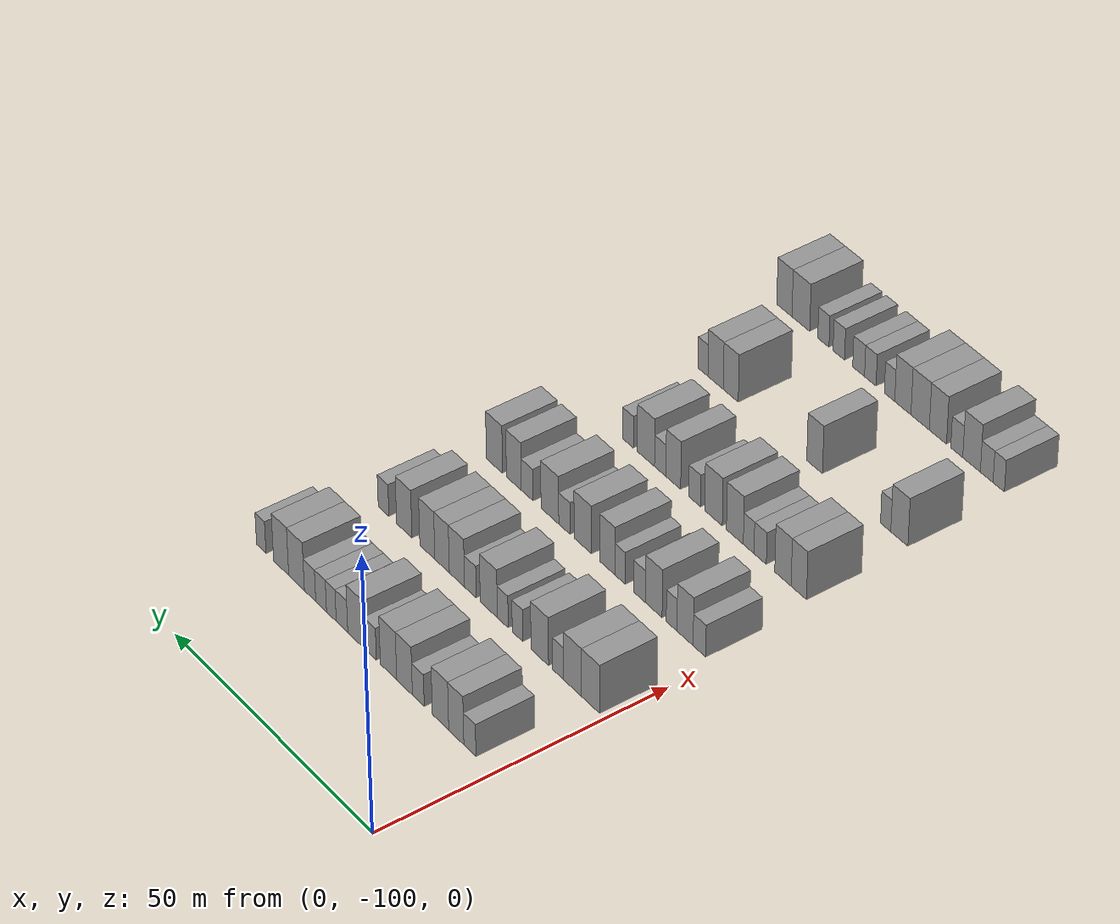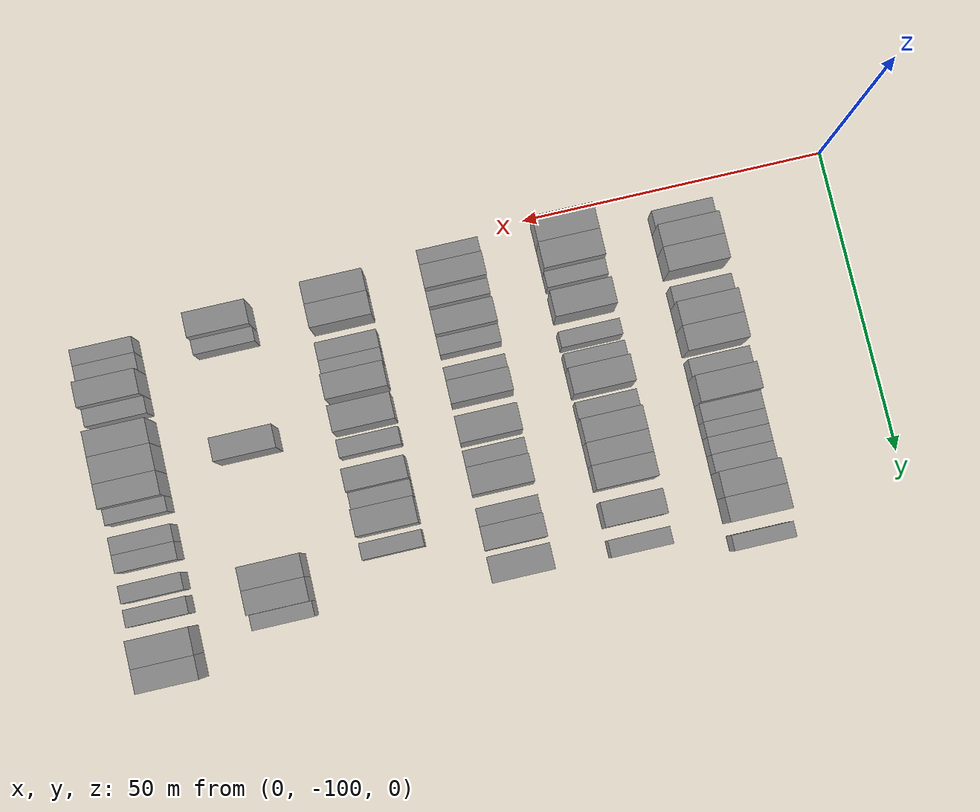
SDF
<sdf version="1.6">
 <world name="default">
  <model name="building_62">
   <static>1</static>
   <pose>25.0000 -94.2913 0 0.000000 0.000000 0.000000</pose>
   <link name="link">
    <pose>0 0 3.00 0 0 0</pose>
    <collision name="collision"><geometry><box><size>10.0000 2.9294 6.0000</size></box></geometry></collision>
    <visual name="visual">
     <cast_shadows>0</cast_shadows>
     <geometry><box><size>10.0000 2.9294 6.0000</size></box></geometry>
     <material>
      <script>
       <uri>model://grey_wall/materials/scripts</uri>
       <uri>model://grey_wall/materials/textures</uri>
       <name>vrc/grey_wall</name>
      </script>
     </material>
    </visual>
   </link>
  </model>
  <model name="building_63">
   <static>1</static>
   <pose>25.0000 -90.9836 0 0.000000 0.000000 0.000000</pose>
   <link name="link">
    <pose>0 0 4.50 0 0 0</pose>
    <collision name="collision"><geometry><box><size>10.0000 3.6861 9.0000</size></box></geometry></collision>
    <visual name="visual">
     <cast_shadows>0</cast_shadows>
     <geometry><box><size>10.0000 3.6861 9.0000</size></box></geometry>
     <material>
      <script>
       <uri>model://grey_wall/materials/scripts</uri>
       <uri>model://grey_wall/materials/textures</uri>
       <name>vrc/grey_wall</name>
      </script>
     </material>
    </visual>
   </link>
  </model>
  <model name="building_64">
   <static>1</static>
   <pose>25.0000 -87.1364 0 0.000000 0.000000 0.000000</pose>
   <link name="link">
    <pose>0 0 4.50 0 0 0</pose>
    <collision name="collision"><geometry><box><size>10.0000 4.0083 9.0000</size></box></geometry></collision>
    <visual name="visual">
     <cast_shadows>0</cast_shadows>
     <geometry><box><size>10.0000 4.0083 9.0000</size></box></geometry>
     <material>
      <script>
       <uri>model://grey_wall/materials/scripts</uri>
       <uri>model://grey_wall/materials/textures</uri>
       <name>vrc/grey_wall</name>
      </script>
     </material>
    </visual>
   </link>
  </model>
  <model name="building_65">
   <static>1</static>
   <pose>25.0000 -81.6730 0 0.000000 0.000000 0.000000</pose>
   <link name="link">
    <pose>0 0 3.00 0 0 0</pose>
    <collision name="collision"><geometry><box><size>10.0000 2.9185 6.0000</size></box></geometry></collision>
    <visual name="visual">
     <cast_shadows>0</cast_shadows>
     <geometry><box><size>10.0000 2.9185 6.0000</size></box></geometry>
     <material>
      <script>
       <uri>model://grey_wall/materials/scripts</uri>
       <uri>model://grey_wall/materials/textures</uri>
       <name>vrc/grey_wall</name>
      </script>
     </material>
    </visual>
   </link>
  </model>
  <model name="building_66">
   <static>1</static>
   <pose>25.0000 -78.2645 0 0.000000 0.000000 0.000000</pose>
   <link name="link">
    <pose>0 0 4.50 0 0 0</pose>
    <collision name="collision"><geometry><box><size>10.0000 3.8984 9.0000</size></box></geometry></collision>
    <visual name="visual">
     <cast_shadows>0</cast_shadows>
     <geometry><box><size>10.0000 3.8984 9.0000</size></box></geometry>
     <material>
      <script>
       <uri>model://grey_wall/materials/scripts</uri>
       <uri>model://grey_wall/materials/textures</uri>
       <name>vrc/grey_wall</name>
      </script>
     </material>
    </visual>
   </link>
  </model>
  <model name="building_67">
   <static>1</static>
   <pose>25.0000 -74.2709 0 0.000000 0.000000 0.000000</pose>
   <link name="link">
    <pose>0 0 4.50 0 0 0</pose>
    <collision name="collision"><geometry><box><size>10.0000 4.0889 9.0000</size></box></geometry></collision>
    <visual name="visual">
     <cast_shadows>0</cast_shadows>
     <geometry><box><size>10.0000 4.0889 9.0000</size></box></geometry>
     <material>
      <script>
       <uri>model://grey_wall/materials/scripts</uri>
       <uri>model://grey_wall/materials/textures</uri>
       <name>vrc/grey_wall</name>
      </script>
     </material>
    </visual>
   </link>
  </model>
  <model name="building_68">
   <static>1</static>
   <pose>25.0000 -69.7475 0 0.000000 0.000000 0.000000</pose>
   <link name="link">
    <pose>0 0 3.00 0 0 0</pose>
    <collision name="collision"><geometry><box><size>10.0000 2.9579 6.0000</size></box></geometry></collision>
    <visual name="visual">
     <cast_shadows>0</cast_shadows>
     <geometry><box><size>10.0000 2.9579 6.0000</size></box></geometry>
     <material>
      <script>
       <uri>model://grey_wall/materials/scripts</uri>
       <uri>model://grey_wall/materials/textures</uri>
       <name>vrc/grey_wall</name>
      </script>
     </material>
    </visual>
   </link>
  </model>
  <model name="building_69">
   <static>1</static>
   <pose>25.0000 -66.1230 0 0.000000 0.000000 0.000000</pose>
   <link name="link">
    <pose>0 0 4.50 0 0 0</pose>
    <collision name="collision"><geometry><box><size>10.0000 4.2911 9.0000</size></box></geometry></collision>
    <visual name="visual">
     <cast_shadows>0</cast_shadows>
     <geometry><box><size>10.0000 4.2911 9.0000</size></box></geometry>
     <material>
      <script>
       <uri>model://grey_wall/materials/scripts</uri>
       <uri>model://grey_wall/materials/textures</uri>
       <name>vrc/grey_wall</name>
      </script>
     </material>
    </visual>
   </link>
  </model>
  <model name="building_70">
   <static>1</static>
   <pose>25.0000 -62.5057 0 0.000000 0.000000 0.000000</pose>
   <link name="link">
    <pose>0 0 3.00 0 0 0</pose>
    <collision name="collision"><geometry><box><size>10.0000 2.9437 6.0000</size></box></geometry></collision>
    <visual name="visual">
     <cast_shadows>0</cast_shadows>
     <geometry><box><size>10.0000 2.9437 6.0000</size></box></geometry>
     <material>
      <script>
       <uri>model://grey_wall/materials/scripts</uri>
       <uri>model://grey_wall/materials/textures</uri>
       <name>vrc/grey_wall</name>
      </script>
     </material>
    </visual>
   </link>
  </model>
  <model name="building_71">
   <static>1</static>
   <pose>25.0000 -59.7899 0 0.000000 0.000000 0.000000</pose>
   <link name="link">
    <pose>0 0 3.00 0 0 0</pose>
    <collision name="collision"><geometry><box><size>10.0000 2.4878 6.0000</size></box></geometry></collision>
    <visual name="visual">
     <cast_shadows>0</cast_shadows>
     <geometry><box><size>10.0000 2.4878 6.0000</size></box></geometry>
     <material>
      <script>
       <uri>model://grey_wall/materials/scripts</uri>
       <uri>model://grey_wall/materials/textures</uri>
       <name>vrc/grey_wall</name>
      </script>
     </material>
    </visual>
   </link>
  </model>
  <model name="building_72">
   <static>1</static>
   <pose>25.0000 -57.1538 0 0.000000 0.000000 0.000000</pose>
   <link name="link">
    <pose>0 0 3.00 0 0 0</pose>
    <collision name="collision"><geometry><box><size>10.0000 2.7846 6.0000</size></box></geometry></collision>
    <visual name="visual">
     <cast_shadows>0</cast_shadows>
     <geometry><box><size>10.0000 2.7846 6.0000</size></box></geometry>
     <material>
      <script>
       <uri>model://grey_wall/materials/scripts</uri>
       <uri>model://grey_wall/materials/textures</uri>
       <name>vrc/grey_wall</name>
      </script>
     </material>
    </visual>
   </link>
  </model>
  <model name="building_73">
   <static>1</static>
   <pose>25.0000 -54.2979 0 0.000000 0.000000 0.000000</pose>
   <link name="link">
    <pose>0 0 3.00 0 0 0</pose>
    <collision name="collision"><geometry><box><size>10.0000 2.9271 6.0000</size></box></geometry></collision>
    <visual name="visual">
     <cast_shadows>0</cast_shadows>
     <geometry><box><size>10.0000 2.9271 6.0000</size></box></geometry>
     <material>
      <script>
       <uri>model://grey_wall/materials/scripts</uri>
       <uri>model://grey_wall/materials/textures</uri>
       <name>vrc/grey_wall</name>
      </script>
     </material>
    </visual>
   </link>
  </model>
  <model name="building_74">
   <static>1</static>
   <pose>25.0000 -50.7964 0 0.000000 0.000000 0.000000</pose>
   <link name="link">
    <pose>0 0 4.50 0 0 0</pose>
    <collision name="collision"><geometry><box><size>10.0000 4.0761 9.0000</size></box></geometry></collision>
    <visual name="visual">
     <cast_shadows>0</cast_shadows>
     <geometry><box><size>10.0000 4.0761 9.0000</size></box></geometry>
     <material>
      <script>
       <uri>model://grey_wall/materials/scripts</uri>
       <uri>model://grey_wall/materials/textures</uri>
       <name>vrc/grey_wall</name>
      </script>
     </material>
    </visual>
   </link>
  </model>
  <model name="building_75">
   <static>1</static>
   <pose>25.0000 -46.7807 0 0.000000 0.000000 0.000000</pose>
   <link name="link">
    <pose>0 0 4.50 0 0 0</pose>
    <collision name="collision"><geometry><box><size>10.0000 3.9552 9.0000</size></box></geometry></collision>
    <visual name="visual">
     <cast_shadows>0</cast_shadows>
     <geometry><box><size>10.0000 3.9552 9.0000</size></box></geometry>
     <material>
      <script>
       <uri>model://grey_wall/materials/scripts</uri>
       <uri>model://grey_wall/materials/textures</uri>
       <name>vrc/grey_wall</name>
      </script>
     </material>
    </visual>
   </link>
  </model>
  <model name="building_76">
   <static>1</static>
   <pose>25.0000 -41.5595 0 0.000000 0.000000 0.000000</pose>
   <link name="link">
    <pose>0 0 3.00 0 0 0</pose>
    <collision name="collision"><geometry><box><size>10.0000 2.4872 6.0000</size></box></geometry></collision>
    <visual name="visual">
     <cast_shadows>0</cast_shadows>
     <geometry><box><size>10.0000 2.4872 6.0000</size></box></geometry>
     <material>
      <script>
       <uri>model://grey_wall/materials/scripts</uri>
       <uri>model://grey_wall/materials/textures</uri>
       <name>vrc/grey_wall</name>
      </script>
     </material>
    </visual>
   </link>
  </model>
  <model name="building_229">
   <static>1</static>
   <pose>44.0000 -96.5054 0 0.000000 0.000000 0.000000</pose>
   <link name="link">
    <pose>0 0 4.50 0 0 0</pose>
    <collision name="collision"><geometry><box><size>10.0000 4.3014 9.0000</size></box></geometry></collision>
    <visual name="visual">
     <cast_shadows>0</cast_shadows>
     <geometry><box><size>10.0000 4.3014 9.0000</size></box></geometry>
     <material>
      <script>
       <uri>model://grey_wall/materials/scripts</uri>
       <uri>model://grey_wall/materials/textures</uri>
       <name>vrc/grey_wall</name>
      </script>
     </material>
    </visual>
   </link>
  </model>
  <model name="building_230">
   <static>1</static>
   <pose>44.0000 -92.2120 0 0.000000 0.000000 0.000000</pose>
   <link name="link">
    <pose>0 0 4.50 0 0 0</pose>
    <collision name="collision"><geometry><box><size>10.0000 4.2855 9.0000</size></box></geometry></collision>
    <visual name="visual">
     <cast_shadows>0</cast_shadows>
     <geometry><box><size>10.0000 4.2855 9.0000</size></box></geometry>
     <material>
      <script>
       <uri>model://grey_wall/materials/scripts</uri>
       <uri>model://grey_wall/materials/textures</uri>
       <name>vrc/grey_wall</name>
      </script>
     </material>
    </visual>
   </link>
  </model>
  <model name="building_231">
   <static>1</static>
   <pose>44.0000 -88.7351 0 0.000000 0.000000 0.000000</pose>
   <link name="link">
    <pose>0 0 3.00 0 0 0</pose>
    <collision name="collision"><geometry><box><size>10.0000 2.6683 6.0000</size></box></geometry></collision>
    <visual name="visual">
     <cast_shadows>0</cast_shadows>
     <geometry><box><size>10.0000 2.6683 6.0000</size></box></geometry>
     <material>
      <script>
       <uri>model://grey_wall/materials/scripts</uri>
       <uri>model://grey_wall/materials/textures</uri>
       <name>vrc/grey_wall</name>
      </script>
     </material>
    </visual>
   </link>
  </model>
  <model name="building_232">
   <static>1</static>
   <pose>44.0000 -84.2660 0 0.000000 0.000000 0.000000</pose>
   <link name="link">
    <pose>0 0 4.50 0 0 0</pose>
    <collision name="collision"><geometry><box><size>10.0000 4.2700 9.0000</size></box></geometry></collision>
    <visual name="visual">
     <cast_shadows>0</cast_shadows>
     <geometry><box><size>10.0000 4.2700 9.0000</size></box></geometry>
     <material>
      <script>
       <uri>model://grey_wall/materials/scripts</uri>
       <uri>model://grey_wall/materials/textures</uri>
       <name>vrc/grey_wall</name>
      </script>
     </material>
    </visual>
   </link>
  </model>
  <model name="building_233">
   <static>1</static>
   <pose>44.0000 -78.8281 0 0.000000 0.000000 0.000000</pose>
   <link name="link">
    <pose>0 0 3.00 0 0 0</pose>
    <collision name="collision"><geometry><box><size>10.0000 2.6058 6.0000</size></box></geometry></collision>
    <visual name="visual">
     <cast_shadows>0</cast_shadows>
     <geometry><box><size>10.0000 2.6058 6.0000</size></box></geometry>
     <material>
      <script>
       <uri>model://grey_wall/materials/scripts</uri>
       <uri>model://grey_wall/materials/textures</uri>
       <name>vrc/grey_wall</name>
      </script>
     </material>
    </visual>
   </link>
  </model>
  <model name="building_234">
   <static>1</static>
   <pose>44.0000 -75.1882 0 0.000000 0.000000 0.000000</pose>
   <link name="link">
    <pose>0 0 3.00 0 0 0</pose>
    <collision name="collision"><geometry><box><size>10.0000 2.6739 6.0000</size></box></geometry></collision>
    <visual name="visual">
     <cast_shadows>0</cast_shadows>
     <geometry><box><size>10.0000 2.6739 6.0000</size></box></geometry>
     <material>
      <script>
       <uri>model://grey_wall/materials/scripts</uri>
       <uri>model://grey_wall/materials/textures</uri>
       <name>vrc/grey_wall</name>
      </script>
     </material>
    </visual>
   </link>
  </model>
  <model name="building_235">
   <static>1</static>
   <pose>44.0000 -71.7204 0 0.000000 0.000000 0.000000</pose>
   <link name="link">
    <pose>0 0 4.50 0 0 0</pose>
    <collision name="collision"><geometry><box><size>10.0000 4.2618 9.0000</size></box></geometry></collision>
    <visual name="visual">
     <cast_shadows>0</cast_shadows>
     <geometry><box><size>10.0000 4.2618 9.0000</size></box></geometry>
     <material>
      <script>
       <uri>model://grey_wall/materials/scripts</uri>
       <uri>model://grey_wall/materials/textures</uri>
       <name>vrc/grey_wall</name>
      </script>
     </material>
    </visual>
   </link>
  </model>
  <model name="building_236">
   <static>1</static>
   <pose>44.0000 -67.1307 0 0.000000 0.000000 0.000000</pose>
   <link name="link">
    <pose>0 0 3.00 0 0 0</pose>
    <collision name="collision"><geometry><box><size>10.0000 2.9176 6.0000</size></box></geometry></collision>
    <visual name="visual">
     <cast_shadows>0</cast_shadows>
     <geometry><box><size>10.0000 2.9176 6.0000</size></box></geometry>
     <material>
      <script>
       <uri>model://grey_wall/materials/scripts</uri>
       <uri>model://grey_wall/materials/textures</uri>
       <name>vrc/grey_wall</name>
      </script>
     </material>
    </visual>
   </link>
  </model>
  <model name="building_237">
   <static>1</static>
   <pose>44.0000 -63.7560 0 0.000000 0.000000 0.000000</pose>
   <link name="link">
    <pose>0 0 4.50 0 0 0</pose>
    <collision name="collision"><geometry><box><size>10.0000 3.8317 9.0000</size></box></geometry></collision>
    <visual name="visual">
     <cast_shadows>0</cast_shadows>
     <geometry><box><size>10.0000 3.8317 9.0000</size></box></geometry>
     <material>
      <script>
       <uri>model://grey_wall/materials/scripts</uri>
       <uri>model://grey_wall/materials/textures</uri>
       <name>vrc/grey_wall</name>
      </script>
     </material>
    </visual>
   </link>
  </model>
  <model name="building_238">
   <static>1</static>
   <pose>44.0000 -60.0075 0 0.000000 0.000000 0.000000</pose>
   <link name="link">
    <pose>0 0 4.50 0 0 0</pose>
    <collision name="collision"><geometry><box><size>10.0000 3.6653 9.0000</size></box></geometry></collision>
    <visual name="visual">
     <cast_shadows>0</cast_shadows>
     <geometry><box><size>10.0000 3.6653 9.0000</size></box></geometry>
     <material>
      <script>
       <uri>model://grey_wall/materials/scripts</uri>
       <uri>model://grey_wall/materials/textures</uri>
       <name>vrc/grey_wall</name>
      </script>
     </material>
    </visual>
   </link>
  </model>
  <model name="building_239">
   <static>1</static>
   <pose>44.0000 -56.2583 0 0.000000 0.000000 0.000000</pose>
   <link name="link">
    <pose>0 0 4.50 0 0 0</pose>
    <collision name="collision"><geometry><box><size>10.0000 3.8332 9.0000</size></box></geometry></collision>
    <visual name="visual">
     <cast_shadows>0</cast_shadows>
     <geometry><box><size>10.0000 3.8332 9.0000</size></box></geometry>
     <material>
      <script>
       <uri>model://grey_wall/materials/scripts</uri>
       <uri>model://grey_wall/materials/textures</uri>
       <name>vrc/grey_wall</name>
      </script>
     </material>
    </visual>
   </link>
  </model>
  <model name="building_240">
   <static>1</static>
   <pose>44.0000 -50.3608 0 0.000000 0.000000 0.000000</pose>
   <link name="link">
    <pose>0 0 4.50 0 0 0</pose>
    <collision name="collision"><geometry><box><size>10.0000 3.9616 9.0000</size></box></geometry></collision>
    <visual name="visual">
     <cast_shadows>0</cast_shadows>
     <geometry><box><size>10.0000 3.9616 9.0000</size></box></geometry>
     <material>
      <script>
       <uri>model://grey_wall/materials/scripts</uri>
       <uri>model://grey_wall/materials/textures</uri>
       <name>vrc/grey_wall</name>
      </script>
     </material>
    </visual>
   </link>
  </model>
  <model name="building_241">
   <static>1</static>
   <pose>44.0000 -45.0014 0 0.000000 0.000000 0.000000</pose>
   <link name="link">
    <pose>0 0 3.00 0 0 0</pose>
    <collision name="collision"><geometry><box><size>10.0000 2.7573 6.0000</size></box></geometry></collision>
    <visual name="visual">
     <cast_shadows>0</cast_shadows>
     <geometry><box><size>10.0000 2.7573 6.0000</size></box></geometry>
     <material>
      <script>
       <uri>model://grey_wall/materials/scripts</uri>
       <uri>model://grey_wall/materials/textures</uri>
       <name>vrc/grey_wall</name>
      </script>
     </material>
    </visual>
   </link>
  </model>
  <model name="building_407">
   <static>1</static>
   <pose>63.0000 -96.4798 0 0.000000 0.000000 0.000000</pose>
   <link name="link">
    <pose>0 0 3.00 0 0 0</pose>
    <collision name="collision"><geometry><box><size>10.0000 2.9730 6.0000</size></box></geometry></collision>
    <visual name="visual">
     <cast_shadows>0</cast_shadows>
     <geometry><box><size>10.0000 2.9730 6.0000</size></box></geometry>
     <material>
      <script>
       <uri>model://grey_wall/materials/scripts</uri>
       <uri>model://grey_wall/materials/textures</uri>
       <name>vrc/grey_wall</name>
      </script>
     </material>
    </visual>
   </link>
  </model>
  <model name="building_408">
   <static>1</static>
   <pose>63.0000 -93.0751 0 0.000000 0.000000 0.000000</pose>
   <link name="link">
    <pose>0 0 4.50 0 0 0</pose>
    <collision name="collision"><geometry><box><size>10.0000 3.8363 9.0000</size></box></geometry></collision>
    <visual name="visual">
     <cast_shadows>0</cast_shadows>
     <geometry><box><size>10.0000 3.8363 9.0000</size></box></geometry>
     <material>
      <script>
       <uri>model://grey_wall/materials/scripts</uri>
       <uri>model://grey_wall/materials/textures</uri>
       <name>vrc/grey_wall</name>
      </script>
     </material>
    </visual>
   </link>
  </model>
  <model name="building_409">
   <static>1</static>
   <pose>63.0000 -89.8728 0 0.000000 0.000000 0.000000</pose>
   <link name="link">
    <pose>0 0 3.00 0 0 0</pose>
    <collision name="collision"><geometry><box><size>10.0000 2.5684 6.0000</size></box></geometry></collision>
    <visual name="visual">
     <cast_shadows>0</cast_shadows>
     <geometry><box><size>10.0000 2.5684 6.0000</size></box></geometry>
     <material>
      <script>
       <uri>model://grey_wall/materials/scripts</uri>
       <uri>model://grey_wall/materials/textures</uri>
       <name>vrc/grey_wall</name>
      </script>
     </material>
    </visual>
   </link>
  </model>
  <model name="building_410">
   <static>1</static>
   <pose>63.0000 -85.6024 0 0.000000 0.000000 0.000000</pose>
   <link name="link">
    <pose>0 0 4.50 0 0 0</pose>
    <collision name="collision"><geometry><box><size>10.0000 3.9724 9.0000</size></box></geometry></collision>
    <visual name="visual">
     <cast_shadows>0</cast_shadows>
     <geometry><box><size>10.0000 3.9724 9.0000</size></box></geometry>
     <material>
      <script>
       <uri>model://grey_wall/materials/scripts</uri>
       <uri>model://grey_wall/materials/textures</uri>
       <name>vrc/grey_wall</name>
      </script>
     </material>
    </visual>
   </link>
  </model>
  <model name="building_411">
   <static>1</static>
   <pose>63.0000 -82.1490 0 0.000000 0.000000 0.000000</pose>
   <link name="link">
    <pose>0 0 3.00 0 0 0</pose>
    <collision name="collision"><geometry><box><size>10.0000 2.9343 6.0000</size></box></geometry></collision>
    <visual name="visual">
     <cast_shadows>0</cast_shadows>
     <geometry><box><size>10.0000 2.9343 6.0000</size></box></geometry>
     <material>
      <script>
       <uri>model://grey_wall/materials/scripts</uri>
       <uri>model://grey_wall/materials/textures</uri>
       <name>vrc/grey_wall</name>
      </script>
     </material>
    </visual>
   </link>
  </model>
  <model name="building_412">
   <static>1</static>
   <pose>63.0000 -77.4513 0 0.000000 0.000000 0.000000</pose>
   <link name="link">
    <pose>0 0 3.00 0 0 0</pose>
    <collision name="collision"><geometry><box><size>10.0000 2.4612 6.0000</size></box></geometry></collision>
    <visual name="visual">
     <cast_shadows>0</cast_shadows>
     <geometry><box><size>10.0000 2.4612 6.0000</size></box></geometry>
     <material>
      <script>
       <uri>model://grey_wall/materials/scripts</uri>
       <uri>model://grey_wall/materials/textures</uri>
       <name>vrc/grey_wall</name>
      </script>
     </material>
    </visual>
   </link>
  </model>
  <model name="building_413">
   <static>1</static>
   <pose>63.0000 -74.3368 0 0.000000 0.000000 0.000000</pose>
   <link name="link">
    <pose>0 0 4.50 0 0 0</pose>
    <collision name="collision"><geometry><box><size>10.0000 3.7678 9.0000</size></box></geometry></collision>
    <visual name="visual">
     <cast_shadows>0</cast_shadows>
     <geometry><box><size>10.0000 3.7678 9.0000</size></box></geometry>
     <material>
      <script>
       <uri>model://grey_wall/materials/scripts</uri>
       <uri>model://grey_wall/materials/textures</uri>
       <name>vrc/grey_wall</name>
      </script>
     </material>
    </visual>
   </link>
  </model>
  <model name="building_414">
   <static>1</static>
   <pose>63.0000 -68.2939 0 0.000000 0.000000 0.000000</pose>
   <link name="link">
    <pose>0 0 4.50 0 0 0</pose>
    <collision name="collision"><geometry><box><size>10.0000 4.3180 9.0000</size></box></geometry></collision>
    <visual name="visual">
     <cast_shadows>0</cast_shadows>
     <geometry><box><size>10.0000 4.3180 9.0000</size></box></geometry>
     <material>
      <script>
       <uri>model://grey_wall/materials/scripts</uri>
       <uri>model://grey_wall/materials/textures</uri>
       <name>vrc/grey_wall</name>
      </script>
     </material>
    </visual>
   </link>
  </model>
  <model name="building_415">
   <static>1</static>
   <pose>63.0000 -63.7222 0 0.000000 0.000000 0.000000</pose>
   <link name="link">
    <pose>0 0 3.00 0 0 0</pose>
    <collision name="collision"><geometry><box><size>10.0000 2.8254 6.0000</size></box></geometry></collision>
    <visual name="visual">
     <cast_shadows>0</cast_shadows>
     <geometry><box><size>10.0000 2.8254 6.0000</size></box></geometry>
     <material>
      <script>
       <uri>model://grey_wall/materials/scripts</uri>
       <uri>model://grey_wall/materials/textures</uri>
       <name>vrc/grey_wall</name>
      </script>
     </material>
    </visual>
   </link>
  </model>
  <model name="building_416">
   <static>1</static>
   <pose>63.0000 -60.0894 0 0.000000 0.000000 0.000000</pose>
   <link name="link">
    <pose>0 0 4.50 0 0 0</pose>
    <collision name="collision"><geometry><box><size>10.0000 4.4404 9.0000</size></box></geometry></collision>
    <visual name="visual">
     <cast_shadows>0</cast_shadows>
     <geometry><box><size>10.0000 4.4404 9.0000</size></box></geometry>
     <material>
      <script>
       <uri>model://grey_wall/materials/scripts</uri>
       <uri>model://grey_wall/materials/textures</uri>
       <name>vrc/grey_wall</name>
      </script>
     </material>
    </visual>
   </link>
  </model>
  <model name="building_417">
   <static>1</static>
   <pose>63.0000 -54.3757 0 0.000000 0.000000 0.000000</pose>
   <link name="link">
    <pose>0 0 3.00 0 0 0</pose>
    <collision name="collision"><geometry><box><size>10.0000 2.9869 6.0000</size></box></geometry></collision>
    <visual name="visual">
     <cast_shadows>0</cast_shadows>
     <geometry><box><size>10.0000 2.9869 6.0000</size></box></geometry>
     <material>
      <script>
       <uri>model://grey_wall/materials/scripts</uri>
       <uri>model://grey_wall/materials/textures</uri>
       <name>vrc/grey_wall</name>
      </script>
     </material>
    </visual>
   </link>
  </model>
  <model name="building_418">
   <static>1</static>
   <pose>63.0000 -50.9946 0 0.000000 0.000000 0.000000</pose>
   <link name="link">
    <pose>0 0 4.50 0 0 0</pose>
    <collision name="collision"><geometry><box><size>10.0000 3.7754 9.0000</size></box></geometry></collision>
    <visual name="visual">
     <cast_shadows>0</cast_shadows>
     <geometry><box><size>10.0000 3.7754 9.0000</size></box></geometry>
     <material>
      <script>
       <uri>model://grey_wall/materials/scripts</uri>
       <uri>model://grey_wall/materials/textures</uri>
       <name>vrc/grey_wall</name>
      </script>
     </material>
    </visual>
   </link>
  </model>
  <model name="building_419">
   <static>1</static>
   <pose>63.0000 -46.0370 0 0.000000 0.000000 0.000000</pose>
   <link name="link">
    <pose>0 0 4.50 0 0 0</pose>
    <collision name="collision"><geometry><box><size>10.0000 4.1398 9.0000</size></box></geometry></collision>
    <visual name="visual">
     <cast_shadows>0</cast_shadows>
     <geometry><box><size>10.0000 4.1398 9.0000</size></box></geometry>
     <material>
      <script>
       <uri>model://grey_wall/materials/scripts</uri>
       <uri>model://grey_wall/materials/textures</uri>
       <name>vrc/grey_wall</name>
      </script>
     </material>
    </visual>
   </link>
  </model>
  <model name="building_577">
   <static>1</static>
   <pose>82.0000 -94.7768 0 0.000000 0.000000 0.000000</pose>
   <link name="link">
    <pose>0 0 4.50 0 0 0</pose>
    <collision name="collision"><geometry><box><size>10.0000 3.6217 9.0000</size></box></geometry></collision>
    <visual name="visual">
     <cast_shadows>0</cast_shadows>
     <geometry><box><size>10.0000 3.6217 9.0000</size></box></geometry>
     <material>
      <script>
       <uri>model://grey_wall/materials/scripts</uri>
       <uri>model://grey_wall/materials/textures</uri>
       <name>vrc/grey_wall</name>
      </script>
     </material>
    </visual>
   </link>
  </model>
  <model name="building_578">
   <static>1</static>
   <pose>82.0000 -91.0421 0 0.000000 0.000000 0.000000</pose>
   <link name="link">
    <pose>0 0 4.50 0 0 0</pose>
    <collision name="collision"><geometry><box><size>10.0000 3.8477 9.0000</size></box></geometry></collision>
    <visual name="visual">
     <cast_shadows>0</cast_shadows>
     <geometry><box><size>10.0000 3.8477 9.0000</size></box></geometry>
     <material>
      <script>
       <uri>model://grey_wall/materials/scripts</uri>
       <uri>model://grey_wall/materials/textures</uri>
       <name>vrc/grey_wall</name>
      </script>
     </material>
    </visual>
   </link>
  </model>
  <model name="building_579">
   <static>1</static>
   <pose>82.0000 -85.6497 0 0.000000 0.000000 0.000000</pose>
   <link name="link">
    <pose>0 0 3.00 0 0 0</pose>
    <collision name="collision"><geometry><box><size>10.0000 2.9372 6.0000</size></box></geometry></collision>
    <visual name="visual">
     <cast_shadows>0</cast_shadows>
     <geometry><box><size>10.0000 2.9372 6.0000</size></box></geometry>
     <material>
      <script>
       <uri>model://grey_wall/materials/scripts</uri>
       <uri>model://grey_wall/materials/textures</uri>
       <name>vrc/grey_wall</name>
      </script>
     </material>
    </visual>
   </link>
  </model>
  <model name="building_580">
   <static>1</static>
   <pose>82.0000 -82.9049 0 0.000000 0.000000 0.000000</pose>
   <link name="link">
    <pose>0 0 3.00 0 0 0</pose>
    <collision name="collision"><geometry><box><size>10.0000 2.5524 6.0000</size></box></geometry></collision>
    <visual name="visual">
     <cast_shadows>0</cast_shadows>
     <geometry><box><size>10.0000 2.5524 6.0000</size></box></geometry>
     <material>
      <script>
       <uri>model://grey_wall/materials/scripts</uri>
       <uri>model://grey_wall/materials/textures</uri>
       <name>vrc/grey_wall</name>
      </script>
     </material>
    </visual>
   </link>
  </model>
  <model name="building_581">
   <static>1</static>
   <pose>82.0000 -79.5986 0 0.000000 0.000000 0.000000</pose>
   <link name="link">
    <pose>0 0 4.50 0 0 0</pose>
    <collision name="collision"><geometry><box><size>10.0000 4.0602 9.0000</size></box></geometry></collision>
    <visual name="visual">
     <cast_shadows>0</cast_shadows>
     <geometry><box><size>10.0000 4.0602 9.0000</size></box></geometry>
     <material>
      <script>
       <uri>model://grey_wall/materials/scripts</uri>
       <uri>model://grey_wall/materials/textures</uri>
       <name>vrc/grey_wall</name>
      </script>
     </material>
    </visual>
   </link>
  </model>
  <model name="building_582">
   <static>1</static>
   <pose>82.0000 -74.4341 0 0.000000 0.000000 0.000000</pose>
   <link name="link">
    <pose>0 0 4.50 0 0 0</pose>
    <collision name="collision"><geometry><box><size>10.0000 4.2687 9.0000</size></box></geometry></collision>
    <visual name="visual">
     <cast_shadows>0</cast_shadows>
     <geometry><box><size>10.0000 4.2687 9.0000</size></box></geometry>
     <material>
      <script>
       <uri>model://grey_wall/materials/scripts</uri>
       <uri>model://grey_wall/materials/textures</uri>
       <name>vrc/grey_wall</name>
      </script>
     </material>
    </visual>
   </link>
  </model>
  <model name="building_583">
   <static>1</static>
   <pose>82.0000 -69.8637 0 0.000000 0.000000 0.000000</pose>
   <link name="link">
    <pose>0 0 3.00 0 0 0</pose>
    <collision name="collision"><geometry><box><size>10.0000 2.8721 6.0000</size></box></geometry></collision>
    <visual name="visual">
     <cast_shadows>0</cast_shadows>
     <geometry><box><size>10.0000 2.8721 6.0000</size></box></geometry>
     <material>
      <script>
       <uri>model://grey_wall/materials/scripts</uri>
       <uri>model://grey_wall/materials/textures</uri>
       <name>vrc/grey_wall</name>
      </script>
     </material>
    </visual>
   </link>
  </model>
  <model name="building_584">
   <static>1</static>
   <pose>82.0000 -64.6179 0 0.000000 0.000000 0.000000</pose>
   <link name="link">
    <pose>0 0 4.50 0 0 0</pose>
    <collision name="collision"><geometry><box><size>10.0000 3.6196 9.0000</size></box></geometry></collision>
    <visual name="visual">
     <cast_shadows>0</cast_shadows>
     <geometry><box><size>10.0000 3.6196 9.0000</size></box></geometry>
     <material>
      <script>
       <uri>model://grey_wall/materials/scripts</uri>
       <uri>model://grey_wall/materials/textures</uri>
       <name>vrc/grey_wall</name>
      </script>
     </material>
    </visual>
   </link>
  </model>
  <model name="building_585">
   <static>1</static>
   <pose>82.0000 -61.3873 0 0.000000 0.000000 0.000000</pose>
   <link name="link">
    <pose>0 0 3.00 0 0 0</pose>
    <collision name="collision"><geometry><box><size>10.0000 2.8418 6.0000</size></box></geometry></collision>
    <visual name="visual">
     <cast_shadows>0</cast_shadows>
     <geometry><box><size>10.0000 2.8418 6.0000</size></box></geometry>
     <material>
      <script>
       <uri>model://grey_wall/materials/scripts</uri>
       <uri>model://grey_wall/materials/textures</uri>
       <name>vrc/grey_wall</name>
      </script>
     </material>
    </visual>
   </link>
  </model>
  <model name="building_586">
   <static>1</static>
   <pose>82.0000 -57.8282 0 0.000000 0.000000 0.000000</pose>
   <link name="link">
    <pose>0 0 4.50 0 0 0</pose>
    <collision name="collision"><geometry><box><size>10.0000 4.2763 9.0000</size></box></geometry></collision>
    <visual name="visual">
     <cast_shadows>0</cast_shadows>
     <geometry><box><size>10.0000 4.2763 9.0000</size></box></geometry>
     <material>
      <script>
       <uri>model://grey_wall/materials/scripts</uri>
       <uri>model://grey_wall/materials/textures</uri>
       <name>vrc/grey_wall</name>
      </script>
     </material>
    </visual>
   </link>
  </model>
  <model name="building_587">
   <static>1</static>
   <pose>82.0000 -53.3490 0 0.000000 0.000000 0.000000</pose>
   <link name="link">
    <pose>0 0 3.00 0 0 0</pose>
    <collision name="collision"><geometry><box><size>10.0000 2.6821 6.0000</size></box></geometry></collision>
    <visual name="visual">
     <cast_shadows>0</cast_shadows>
     <geometry><box><size>10.0000 2.6821 6.0000</size></box></geometry>
     <material>
      <script>
       <uri>model://grey_wall/materials/scripts</uri>
       <uri>model://grey_wall/materials/textures</uri>
       <name>vrc/grey_wall</name>
      </script>
     </material>
    </visual>
   </link>
  </model>
  <model name="building_733">
   <static>1</static>
   <pose>101.0000 -93.9595 0 0.000000 0.000000 0.000000</pose>
   <link name="link">
    <pose>0 0 4.50 0 0 0</pose>
    <collision name="collision"><geometry><box><size>10.0000 3.9948 9.0000</size></box></geometry></collision>
    <visual name="visual">
     <cast_shadows>0</cast_shadows>
     <geometry><box><size>10.0000 3.9948 9.0000</size></box></geometry>
     <material>
      <script>
       <uri>model://grey_wall/materials/scripts</uri>
       <uri>model://grey_wall/materials/textures</uri>
       <name>vrc/grey_wall</name>
      </script>
     </material>
    </visual>
   </link>
  </model>
  <model name="building_734">
   <static>1</static>
   <pose>101.0000 -90.7580 0 0.000000 0.000000 0.000000</pose>
   <link name="link">
    <pose>0 0 3.00 0 0 0</pose>
    <collision name="collision"><geometry><box><size>10.0000 2.4082 6.0000</size></box></geometry></collision>
    <visual name="visual">
     <cast_shadows>0</cast_shadows>
     <geometry><box><size>10.0000 2.4082 6.0000</size></box></geometry>
     <material>
      <script>
       <uri>model://grey_wall/materials/scripts</uri>
       <uri>model://grey_wall/materials/textures</uri>
       <name>vrc/grey_wall</name>
      </script>
     </material>
    </visual>
   </link>
  </model>
  <model name="building_735">
   <static>1</static>
   <pose>101.0000 -73.8840 0 0.000000 0.000000 0.000000</pose>
   <link name="link">
    <pose>0 0 4.50 0 0 0</pose>
    <collision name="collision"><geometry><box><size>10.0000 3.7799 9.0000</size></box></geometry></collision>
    <visual name="visual">
     <cast_shadows>0</cast_shadows>
     <geometry><box><size>10.0000 3.7799 9.0000</size></box></geometry>
     <material>
      <script>
       <uri>model://grey_wall/materials/scripts</uri>
       <uri>model://grey_wall/materials/textures</uri>
       <name>vrc/grey_wall</name>
      </script>
     </material>
    </visual>
   </link>
  </model>
  <model name="building_736">
   <static>1</static>
   <pose>101.0000 -53.3920 0 0.000000 0.000000 0.000000</pose>
   <link name="link">
    <pose>0 0 4.50 0 0 0</pose>
    <collision name="collision"><geometry><box><size>10.0000 3.7347 9.0000</size></box></geometry></collision>
    <visual name="visual">
     <cast_shadows>0</cast_shadows>
     <geometry><box><size>10.0000 3.7347 9.0000</size></box></geometry>
     <material>
      <script>
       <uri>model://grey_wall/materials/scripts</uri>
       <uri>model://grey_wall/materials/textures</uri>
       <name>vrc/grey_wall</name>
      </script>
     </material>
    </visual>
   </link>
  </model>
  <model name="building_737">
   <static>1</static>
   <pose>101.0000 -49.6116 0 0.000000 0.000000 0.000000</pose>
   <link name="link">
    <pose>0 0 4.50 0 0 0</pose>
    <collision name="collision"><geometry><box><size>10.0000 3.8261 9.0000</size></box></geometry></collision>
    <visual name="visual">
     <cast_shadows>0</cast_shadows>
     <geometry><box><size>10.0000 3.8261 9.0000</size></box></geometry>
     <material>
      <script>
       <uri>model://grey_wall/materials/scripts</uri>
       <uri>model://grey_wall/materials/textures</uri>
       <name>vrc/grey_wall</name>
      </script>
     </material>
    </visual>
   </link>
  </model>
  <model name="building_738">
   <static>1</static>
   <pose>101.0000 -46.4598 0 0.000000 0.000000 0.000000</pose>
   <link name="link">
    <pose>0 0 3.00 0 0 0</pose>
    <collision name="collision"><geometry><box><size>10.0000 2.4775 6.0000</size></box></geometry></collision>
    <visual name="visual">
     <cast_shadows>0</cast_shadows>
     <geometry><box><size>10.0000 2.4775 6.0000</size></box></geometry>
     <material>
      <script>
       <uri>model://grey_wall/materials/scripts</uri>
       <uri>model://grey_wall/materials/textures</uri>
       <name>vrc/grey_wall</name>
      </script>
     </material>
    </visual>
   </link>
  </model>
  <model name="building_905">
   <static>1</static>
   <pose>120.0000 -93.4057 0 0.000000 0.000000 0.000000</pose>
   <link name="link">
    <pose>0 0 3.00 0 0 0</pose>
    <collision name="collision"><geometry><box><size>10.0000 2.6341 6.0000</size></box></geometry></collision>
    <visual name="visual">
     <cast_shadows>0</cast_shadows>
     <geometry><box><size>10.0000 2.6341 6.0000</size></box></geometry>
     <material>
      <script>
       <uri>model://grey_wall/materials/scripts</uri>
       <uri>model://grey_wall/materials/textures</uri>
       <name>vrc/grey_wall</name>
      </script>
     </material>
    </visual>
   </link>
  </model>
  <model name="building_906">
   <static>1</static>
   <pose>120.0000 -90.6102 0 0.000000 0.000000 0.000000</pose>
   <link name="link">
    <pose>0 0 3.00 0 0 0</pose>
    <collision name="collision"><geometry><box><size>10.0000 2.9570 6.0000</size></box></geometry></collision>
    <visual name="visual">
     <cast_shadows>0</cast_shadows>
     <geometry><box><size>10.0000 2.9570 6.0000</size></box></geometry>
     <material>
      <script>
       <uri>model://grey_wall/materials/scripts</uri>
       <uri>model://grey_wall/materials/textures</uri>
       <name>vrc/grey_wall</name>
      </script>
     </material>
    </visual>
   </link>
  </model>
  <model name="building_907">
   <static>1</static>
   <pose>120.0000 -87.0816 0 0.000000 0.000000 0.000000</pose>
   <link name="link">
    <pose>0 0 4.50 0 0 0</pose>
    <collision name="collision"><geometry><box><size>10.0000 4.1001 9.0000</size></box></geometry></collision>
    <visual name="visual">
     <cast_shadows>0</cast_shadows>
     <geometry><box><size>10.0000 4.1001 9.0000</size></box></geometry>
     <material>
      <script>
       <uri>model://grey_wall/materials/scripts</uri>
       <uri>model://grey_wall/materials/textures</uri>
       <name>vrc/grey_wall</name>
      </script>
     </material>
    </visual>
   </link>
  </model>
  <model name="building_908">
   <static>1</static>
   <pose>120.0000 -83.6164 0 0.000000 0.000000 0.000000</pose>
   <link name="link">
    <pose>0 0 3.00 0 0 0</pose>
    <collision name="collision"><geometry><box><size>10.0000 2.8303 6.0000</size></box></geometry></collision>
    <visual name="visual">
     <cast_shadows>0</cast_shadows>
     <geometry><box><size>10.0000 2.8303 6.0000</size></box></geometry>
     <material>
      <script>
       <uri>model://grey_wall/materials/scripts</uri>
       <uri>model://grey_wall/materials/textures</uri>
       <name>vrc/grey_wall</name>
      </script>
     </material>
    </visual>
   </link>
  </model>
  <model name="building_909">
   <static>1</static>
   <pose>120.0000 -79.1588 0 0.000000 0.000000 0.000000</pose>
   <link name="link">
    <pose>0 0 4.50 0 0 0</pose>
    <collision name="collision"><geometry><box><size>10.0000 4.0848 9.0000</size></box></geometry></collision>
    <visual name="visual">
     <cast_shadows>0</cast_shadows>
     <geometry><box><size>10.0000 4.0848 9.0000</size></box></geometry>
     <material>
      <script>
       <uri>model://grey_wall/materials/scripts</uri>
       <uri>model://grey_wall/materials/textures</uri>
       <name>vrc/grey_wall</name>
      </script>
     </material>
    </visual>
   </link>
  </model>
  <model name="building_910">
   <static>1</static>
   <pose>120.0000 -74.9355 0 0.000000 0.000000 0.000000</pose>
   <link name="link">
    <pose>0 0 4.50 0 0 0</pose>
    <collision name="collision"><geometry><box><size>10.0000 4.3617 9.0000</size></box></geometry></collision>
    <visual name="visual">
     <cast_shadows>0</cast_shadows>
     <geometry><box><size>10.0000 4.3617 9.0000</size></box></geometry>
     <material>
      <script>
       <uri>model://grey_wall/materials/scripts</uri>
       <uri>model://grey_wall/materials/textures</uri>
       <name>vrc/grey_wall</name>
      </script>
     </material>
    </visual>
   </link>
  </model>
  <model name="building_911">
   <static>1</static>
   <pose>120.0000 -70.8095 0 0.000000 0.000000 0.000000</pose>
   <link name="link">
    <pose>0 0 4.50 0 0 0</pose>
    <collision name="collision"><geometry><box><size>10.0000 3.8904 9.0000</size></box></geometry></collision>
    <visual name="visual">
     <cast_shadows>0</cast_shadows>
     <geometry><box><size>10.0000 3.8904 9.0000</size></box></geometry>
     <material>
      <script>
       <uri>model://grey_wall/materials/scripts</uri>
       <uri>model://grey_wall/materials/textures</uri>
       <name>vrc/grey_wall</name>
      </script>
     </material>
    </visual>
   </link>
  </model>
  <model name="building_912">
   <static>1</static>
   <pose>120.0000 -67.6107 0 0.000000 0.000000 0.000000</pose>
   <link name="link">
    <pose>0 0 3.00 0 0 0</pose>
    <collision name="collision"><geometry><box><size>10.0000 2.5073 6.0000</size></box></geometry></collision>
    <visual name="visual">
     <cast_shadows>0</cast_shadows>
     <geometry><box><size>10.0000 2.5073 6.0000</size></box></geometry>
     <material>
      <script>
       <uri>model://grey_wall/materials/scripts</uri>
       <uri>model://grey_wall/materials/textures</uri>
       <name>vrc/grey_wall</name>
      </script>
     </material>
    </visual>
   </link>
  </model>
  <model name="building_913">
   <static>1</static>
   <pose>120.0000 -62.9584 0 0.000000 0.000000 0.000000</pose>
   <link name="link">
    <pose>0 0 3.00 0 0 0</pose>
    <collision name="collision"><geometry><box><size>10.0000 2.7972 6.0000</size></box></geometry></collision>
    <visual name="visual">
     <cast_shadows>0</cast_shadows>
     <geometry><box><size>10.0000 2.7972 6.0000</size></box></geometry>
     <material>
      <script>
       <uri>model://grey_wall/materials/scripts</uri>
       <uri>model://grey_wall/materials/textures</uri>
       <name>vrc/grey_wall</name>
      </script>
     </material>
    </visual>
   </link>
  </model>
  <model name="building_914">
   <static>1</static>
   <pose>120.0000 -60.1173 0 0.000000 0.000000 0.000000</pose>
   <link name="link">
    <pose>0 0 3.00 0 0 0</pose>
    <collision name="collision"><geometry><box><size>10.0000 2.8849 6.0000</size></box></geometry></collision>
    <visual name="visual">
     <cast_shadows>0</cast_shadows>
     <geometry><box><size>10.0000 2.8849 6.0000</size></box></geometry>
     <material>
      <script>
       <uri>model://grey_wall/materials/scripts</uri>
       <uri>model://grey_wall/materials/textures</uri>
       <name>vrc/grey_wall</name>
      </script>
     </material>
    </visual>
   </link>
  </model>
  <model name="building_915">
   <static>1</static>
   <pose>120.0000 -55.2664 0 0.000000 0.000000 0.000000</pose>
   <link name="link">
    <pose>0 0 3.00 0 0 0</pose>
    <collision name="collision"><geometry><box><size>10.0000 2.8170 6.0000</size></box></geometry></collision>
    <visual name="visual">
     <cast_shadows>0</cast_shadows>
     <geometry><box><size>10.0000 2.8170 6.0000</size></box></geometry>
     <material>
      <script>
       <uri>model://grey_wall/materials/scripts</uri>
       <uri>model://grey_wall/materials/textures</uri>
       <name>vrc/grey_wall</name>
      </script>
     </material>
    </visual>
   </link>
  </model>
  <model name="building_916">
   <static>1</static>
   <pose>120.0000 -51.4693 0 0.000000 0.000000 0.000000</pose>
   <link name="link">
    <pose>0 0 3.00 0 0 0</pose>
    <collision name="collision"><geometry><box><size>10.0000 2.7772 6.0000</size></box></geometry></collision>
    <visual name="visual">
     <cast_shadows>0</cast_shadows>
     <geometry><box><size>10.0000 2.7772 6.0000</size></box></geometry>
     <material>
      <script>
       <uri>model://grey_wall/materials/scripts</uri>
       <uri>model://grey_wall/materials/textures</uri>
       <name>vrc/grey_wall</name>
      </script>
     </material>
    </visual>
   </link>
  </model>
  <model name="building_917">
   <static>1</static>
   <pose>120.0000 -45.8720 0 0.000000 0.000000 0.000000</pose>
   <link name="link">
    <pose>0 0 4.50 0 0 0</pose>
    <collision name="collision"><geometry><box><size>10.0000 4.4173 9.0000</size></box></geometry></collision>
    <visual name="visual">
     <cast_shadows>0</cast_shadows>
     <geometry><box><size>10.0000 4.4173 9.0000</size></box></geometry>
     <material>
      <script>
       <uri>model://grey_wall/materials/scripts</uri>
       <uri>model://grey_wall/materials/textures</uri>
       <name>vrc/grey_wall</name>
      </script>
     </material>
    </visual>
   </link>
  </model>
  <model name="building_918">
   <static>1</static>
   <pose>120.0000 -41.7588 0 0.000000 0.000000 0.000000</pose>
   <link name="link">
    <pose>0 0 4.50 0 0 0</pose>
    <collision name="collision"><geometry><box><size>10.0000 3.8093 9.0000</size></box></geometry></collision>
    <visual name="visual">
     <cast_shadows>0</cast_shadows>
     <geometry><box><size>10.0000 3.8093 9.0000</size></box></geometry>
     <material>
      <script>
       <uri>model://grey_wall/materials/scripts</uri>
       <uri>model://grey_wall/materials/textures</uri>
       <name>vrc/grey_wall</name>
      </script>
     </material>
    </visual>
   </link>
  </model>
 </world>
</sdf>
